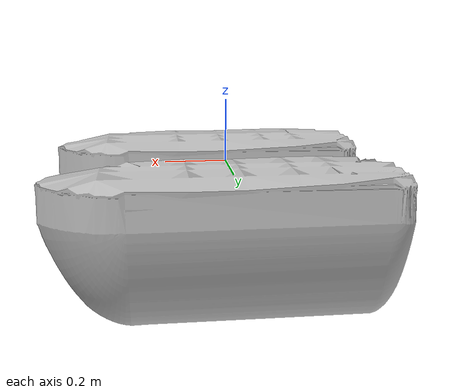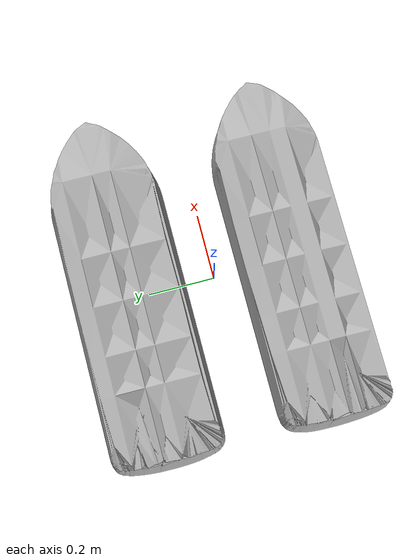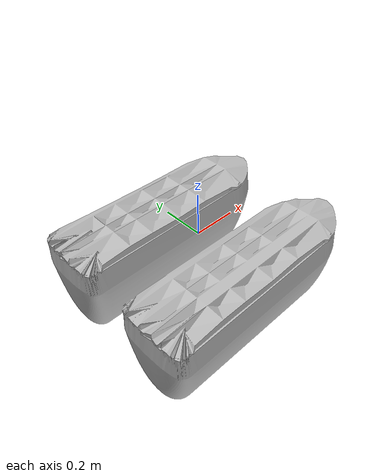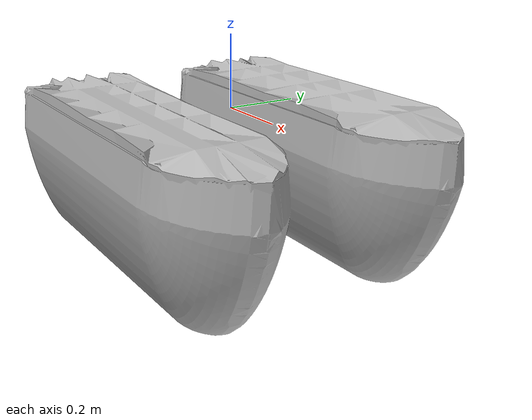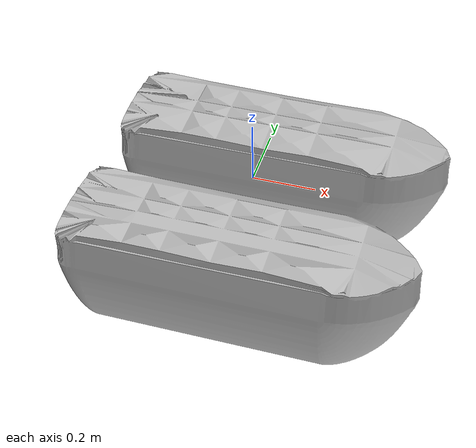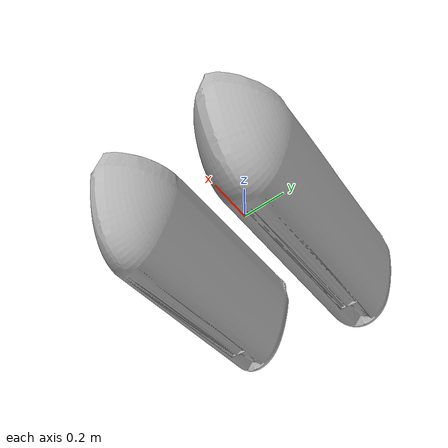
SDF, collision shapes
<?xml version="1.0"?>
<sdf version="1.6">
  <model name="vtec_s3">
    <link name="base_link">
      <inertial>
        <pose>0 0 -0.2 0 0 0</pose>
        <mass>50.0</mass>
        <inertia>
          <ixx>0.5666666666666668</ixx>
          <ixy>0</ixy>
          <ixz>0</ixz>
          <iyy>1.0416666666666667</iyy>
          <iyz>0</iyz>
          <izz>1.5416666666666667</izz>
        </inertia>
      </inertial>
      <visual name="visual">
        <geometry>
          <mesh>
            <uri>file://vtec_s3/meshes/vtec_s3.dae</uri>
            <scale>0.1 0.1 0.1</scale>
          </mesh>
        </geometry>
      </visual>

      <collision name="Coll">
        <pose>-0.4 0 0 0 0 0</pose>
        <geometry>
          <mesh>
            <uri>file://vtec_s3/meshes/vtec_s4_minimal2.stl</uri>
            <scale>0.7 0.95 1.5</scale>
          </mesh>
        </geometry>
      </collision>
    </link>

    <!-- Left thruster housing -->
    <link name="left_housing_link">
      <inertial>
        <pose>-0.3 0.23 -0.31 0 0 0</pose>
        <mass>1</mass>
        <inertia>
          <ixx>0.0020290833333333333</ixx>
          <ixy>0</ixy>
          <ixz>0</ixz>
          <iyy>0.002408333333333333</iyy>
          <iyz>0</iyz>
          <izz>0.0006874166666666666</izz>
        </inertia>
      </inertial>

      <visual name="left_housing_visual">
        <pose>-0.3 0.23 -0.31 0 0 0</pose>
        <geometry>
          <mesh>
            <uri>file://vtec_s3/meshes/housing.dae</uri>
          </mesh>
        </geometry>
        <material>
          <diffuse>1.0 1.0 1.0</diffuse>
          <specular>1.0 1.0 1.0</specular>
          <pbr>
            <metal>
              <albedo_map>file://vtec_s3/materials/textures/Thruster_Albedo.png</albedo_map>
              <roughness_map>file://vtec_s3/materials/textures/Thruster_Roughness.png</roughness_map>
            </metal>
          </pbr>
        </material>
      </visual>

      <collision name="Cylinder263d">
        <pose>-0.2833463 0.22986701 -0.31 1.5708 0.0 -1.5708</pose>
        <geometry>
          <cylinder>
            <length>0.14376</length>
            <radius>0.0243692</radius>
          </cylinder>
        </geometry>
      </collision>
    </link>

    <!-- Left propeller -->
    <link name="left_prop_link">
      <inertial>
        <pose>-0.300872875 0.229867016 -0.31 1.5708 0.0 -1.5708</pose>
        <mass>0.1</mass>
        <inertia>
          <ixx>0.00010562499999999999</ixx>
          <ixy>0</ixy>
          <ixz>0</ixz>
          <iyy>0.00010562499999999999</iyy>
          <iyz>0</iyz>
          <izz>0.00015125000000000002</izz>
        </inertia>
      </inertial>
      <visual name="left_prop_visual">
        <pose>-0.3 0.23 -0.31 0 0 0</pose>
        <geometry>
          <mesh>
            <uri>file://vtec_s3/meshes/prop.dae</uri>
          </mesh>
        </geometry>
        <material>
          <diffuse>1.0 1.0 1.0</diffuse>
          <specular>1.0 1.0 1.0</specular>
          <pbr>
            <metal>
              <albedo_map>file://vtec_s3/materials/textures/Thruster_Albedo.png</albedo_map>
              <roughness_map>file://vtec_s3/materials/textures/Thruster_Roughness.png</roughness_map>
            </metal>
          </pbr>
        </material>
      </visual>

      <collision name="Cylinder262d">
        <pose>-0.300872875 0.229867016 -0.31 1.5708 0.0 -1.5708</pose>
        <geometry>
          <cylinder>
            <length>0.0608172</length>
            <radius>0.0553844</radius>
          </cylinder>
        </geometry>
      </collision>
    </link>

    <!-- Right thruster housing -->
    <link name="right_housing_link">
      <inertial>
        <pose>-0.3 -0.23 -0.31 0 0 0</pose>
        <mass>1</mass>
        <inertia>
          <ixx>0.0020290833333333333</ixx>
          <ixy>0</ixy>
          <ixz>0</ixz>
          <iyy>0.002408333333333333</iyy>
          <iyz>0</iyz>
          <izz>0.0006874166666666666</izz>
        </inertia>
      </inertial>
      <visual name="right_housing_visual">
        <pose>-0.3 -0.23 -0.31 0 0 0</pose>
        <geometry>
          <mesh>
            <uri>file://vtec_s3/meshes/housing.dae</uri>
          </mesh>
        </geometry>
        <material>
          <diffuse>1.0 1.0 1.0</diffuse>
          <specular>1.0 1.0 1.0</specular>
          <pbr>
            <metal>
              <albedo_map>file://vtec_s3/materials/textures/Thruster_Albedo.png</albedo_map>
              <roughness_map>file://vtec_s3/materials/textures/Thruster_Roughness.png</roughness_map>
            </metal>
          </pbr>
        </material>
      </visual>

      <!-- Thruster collisions -->
      <collision name="Cylinder263i">
        <pose>-0.2833463 -0.22986701 -0.31 1.5708 0.0 -1.5708</pose>
        <geometry>
          <cylinder>
            <length>0.14376</length>
            <radius>0.0243692</radius>
          </cylinder>
        </geometry>
      </collision>
    </link>

    <!-- Right propeller -->
    <link name="right_prop_link">
      <inertial>
        <pose>-0.300872875 -0.229867016 -0.31 1.5708 0.0 -1.5708</pose>
        <mass>0.1</mass>
        <inertia>
          <ixx>0.00010562499999999999</ixx>
          <ixy>0</ixy>
          <ixz>0</ixz>
          <iyy>0.00010562499999999999</iyy>
          <iyz>0</iyz>
          <izz>0.00015125000000000002</izz>
        </inertia>
      </inertial>
      <visual name="right_prop_visual">
        <pose>-0.3 -0.23 -0.31 0 0 0</pose>
        <geometry>
          <mesh>
            <uri>file://vtec_s3/meshes/prop.dae</uri>
          </mesh>
        </geometry>
        <material>
          <diffuse>1.0 1.0 1.0</diffuse>
          <specular>1.0 1.0 1.0</specular>
          <pbr>
            <metal>
              <albedo_map>file://vtec_s3/materials/textures/Thruster_Albedo.png</albedo_map>
              <roughness_map>file://vtec_s3/materials/textures/Thruster_Roughness.png</roughness_map>
            </metal>
          </pbr>
        </material>
      </visual>

      <collision name="Cylinder262i">
        <pose>-0.300872875 -0.229867016 -0.31 1.5708 0.0 -1.5708</pose>
        <geometry>
          <cylinder>
            <length>0.0608172</length>
            <radius>0.0553844</radius>
          </cylinder>
        </geometry>
      </collision>
    </link>

    <!-- Chassis-left engine joint -->
    <joint name="left_chasis_engine_joint" type="revolute">
      <axis>
        <xyz>0 0 1</xyz>
        <limit>
          <lower>0</lower>
          <upper>0</upper>
          <effort>10</effort>
          <velocity>10</velocity>
        </limit>
      </axis>
      <parent>base_link</parent>
      <child>left_housing_link</child>
    </joint>

    <!-- Left joint housing-propeller -->
    <joint name="left_engine_propeller_joint" type="revolute">
      <pose>-0.300872875 0.229867016 -0.31 1.5708 0.0 0</pose>
      <axis>
        <xyz>1 0 0</xyz>
        <limit>
          <effort>100</effort>
          <velocity>100</velocity>
        </limit>
        <dynamics>
          <friction>0.05</friction>
          <damping>0.05</damping>
        </dynamics>
      </axis>
      <parent>left_housing_link</parent>
      <child>left_prop_link</child>
    </joint>

    <!-- Chassis-right engine joint -->
    <joint name="right_chasis_engine_joint" type="revolute">
      <axis>
        <xyz>0 0 1</xyz>
        <limit>
          <lower>0</lower>
          <upper>0</upper>
          <effort>10</effort>
          <velocity>10</velocity>
        </limit>
      </axis>
      <parent>base_link</parent>
      <child>right_housing_link</child>
    </joint>

    <!-- Right joint housing-propeller -->
    <joint name="right_engine_propeller_joint" type="revolute">
      <pose>-0.300872875 -0.229867016 -0.31 1.5708 0.0 0</pose>
      <axis>
        <xyz>1 0 0</xyz>
        <limit>
          <effort>100</effort>
          <velocity>100</velocity>
        </limit>
        <dynamics>
          <friction>0.05</friction>
          <damping>0.05</damping>
        </dynamics>
      </axis>
      <parent>right_housing_link</parent>
      <child>right_prop_link</child>
    </joint>

    <plugin
      filename="gz-sim-thruster-system"
      name="gz::sim::systems::Thruster">
      <joint_name>left_engine_propeller_joint</joint_name>
      <thrust_coefficient>0.0001</thrust_coefficient>
      <fluid_density>1000</fluid_density>
      <propeller_diameter>0.5</propeller_diameter>
      <velocity_control>true</velocity_control>
    </plugin>

    <plugin
      filename="gz-sim-thruster-system"
      name="gz::sim::systems::Thruster">
      <joint_name>right_engine_propeller_joint</joint_name>
      <thrust_coefficient>0.0001</thrust_coefficient>
      <fluid_density>1000</fluid_density>
      <propeller_diameter>0.5</propeller_diameter>
      <velocity_control>true</velocity_control>
    </plugin>

    <plugin
      filename="gz-sim-odometry-publisher-system"
      name="gz::sim::systems::OdometryPublisher">
      <odom_frame>world</odom_frame>
      <odom_covariance_topic>/gz_sim/odometry</odom_covariance_topic>
    </plugin>

    <!-- Hydrodynamics plugin -->
    <plugin
      filename="gz-waves1-hydrodynamics-system"
      name="gz::sim::systems::Hydrodynamics">

      <enable>vtec_s3::base_link</enable>

      <hydrodynamics>
        <damping_on>1</damping_on>
        <viscous_drag_on>1</viscous_drag_on>
        <pressure_drag_on>1</pressure_drag_on>

        <!-- Linear and Angular Damping -->
        <cDampL1>1.0E-6</cDampL1>
        <cDampL2>1.0E-6</cDampL2>
        <cDampR1>1.0E-6</cDampR1>
        <cDampR2>1.0E-6</cDampR2>

        <!-- 'Pressure' Drag -->
        <cPDrag1>1.0E+2</cPDrag1>
        <cPDrag2>1.0E+2</cPDrag2>
        <fPDrag>0.4</fPDrag>
        <cSDrag1>1.0E+2</cSDrag1>
        <cSDrag2>1.0E+2</cSDrag2>
        <fSDrag>0.4</fSDrag>
        <vRDrag>1.0</vRDrag>
      </hydrodynamics>
    </plugin>
  </model>
</sdf>
